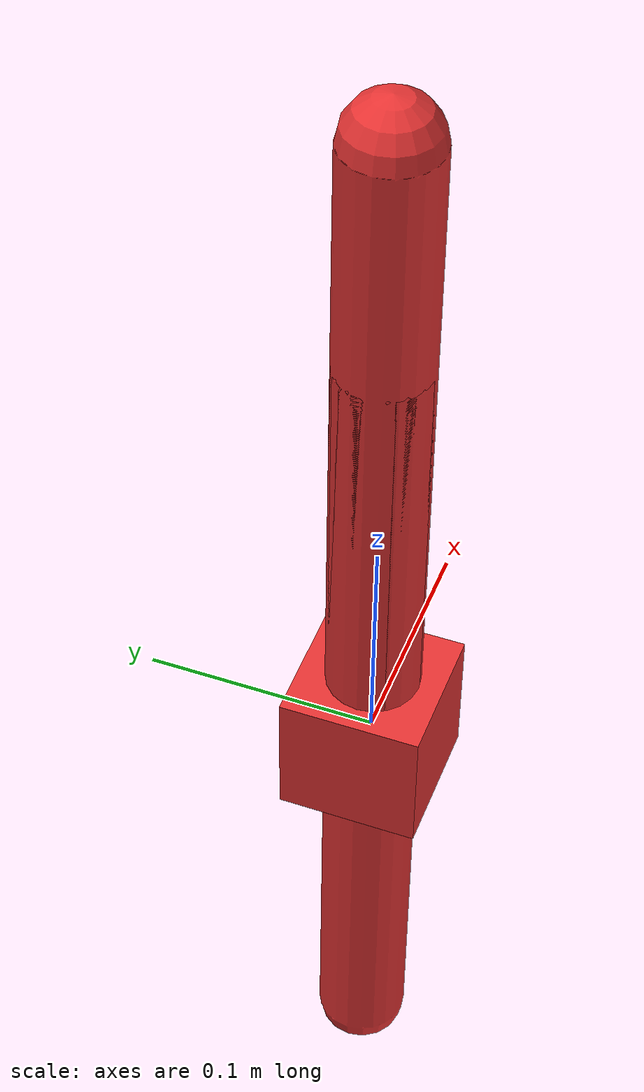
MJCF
<mujoco model="pendulum">
  <compiler angle="radian" inertiafromgeom="true"/>
  <default>
    <joint armature="0.001" damping="1" limited="true"/>
    <geom contype="0" conaffinity="0" friction="1 0.1 0.1" rgba="0.7 0.7 0 1"/>
    <site type="sphere" size="0.001" rgba="0.7 0.7 0 1"/>
  </default>
  <worldbody>
    <light directional="true" ambient="0.2 0.2 0.2" diffuse="0.6 0.6 0.6" specular="0 0 0" pos="0 0 1.3" mode="trackcom"/>
    <body name="base" pos="0 0 0">
      <geom name="rail" type="capsule" size="0.02 0.2" rgba="0.9 0.2 0.2 1" mass="0.01"/>
      <joint name="slide" type="slide" pos="0 0 0" axis="1 0 0" range="-0.2 0.2"/>
      <body name="cart" pos="0 0 0">
        <geom name="cart_geom" type="box" size="0.03 0.03 0.03" rgba="0.9 0.2 0.2 1" mass="1.0"/>
        <joint name="hinge" type="hinge" pos="0 0 0" axis="0 1 0" range="-3.14 3.14"/>
        <body name="pole" pos="0 0 0.05">
          <geom name="pole_geom" type="capsule" size="0.02 0.15" pos="0 0 0.1" rgba="0.9 0.2 0.2 1" mass="0.1"/>
        </body>
      </body>
    </body>
  </worldbody>
  <actuator>
    <motor joint="slide" ctrlrange="-1 1" forcelimited="true" forcerange="-1 1"/>
  </actuator>
</mujoco>
